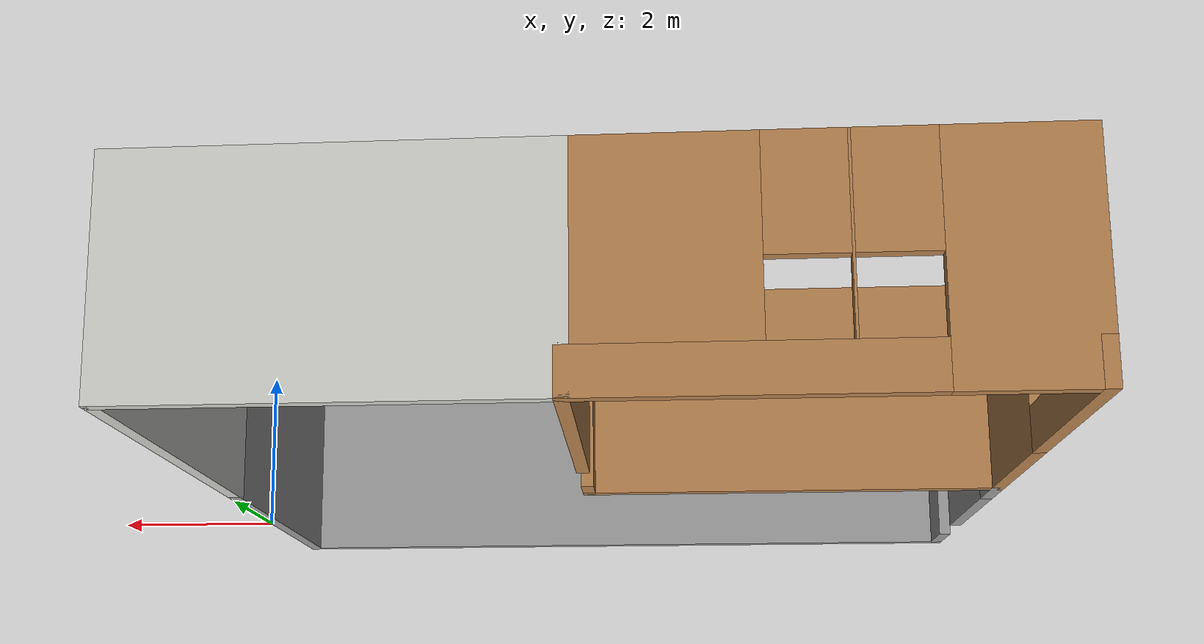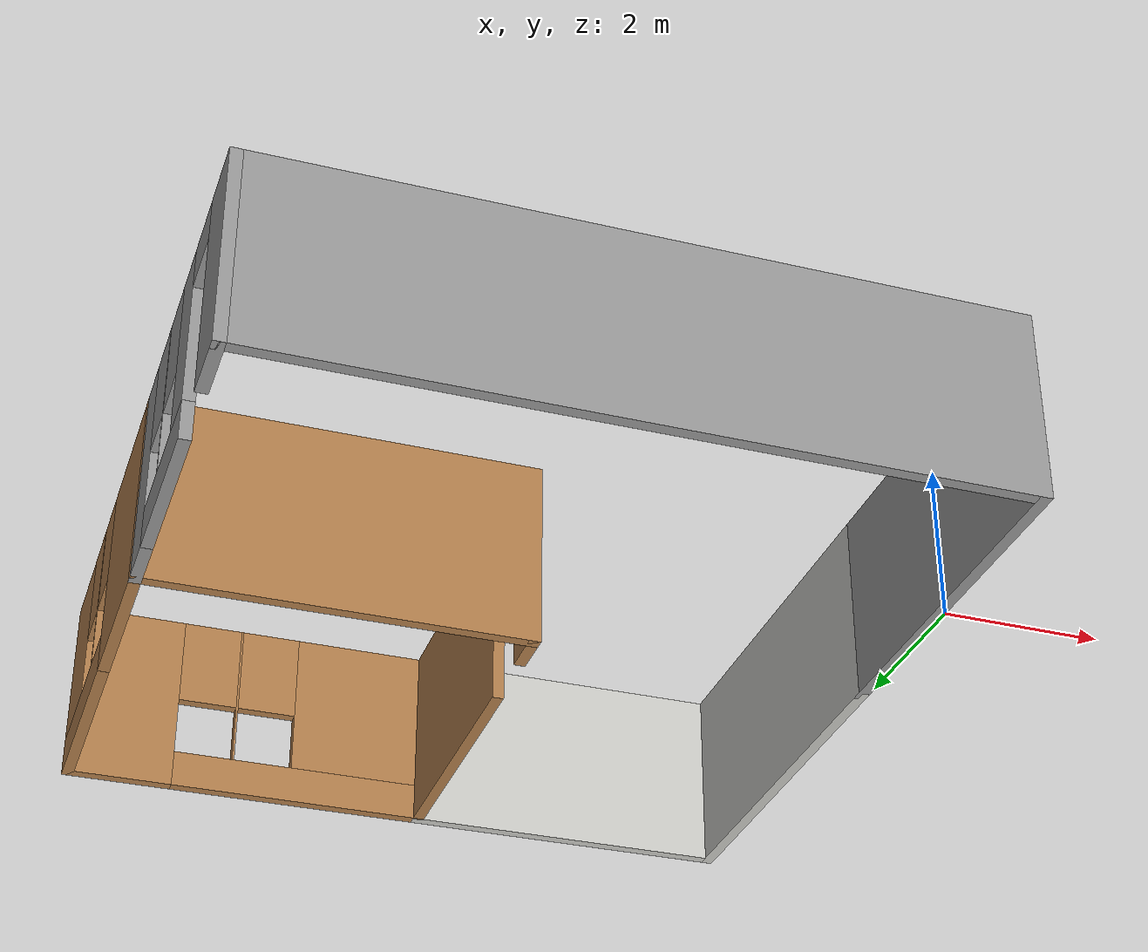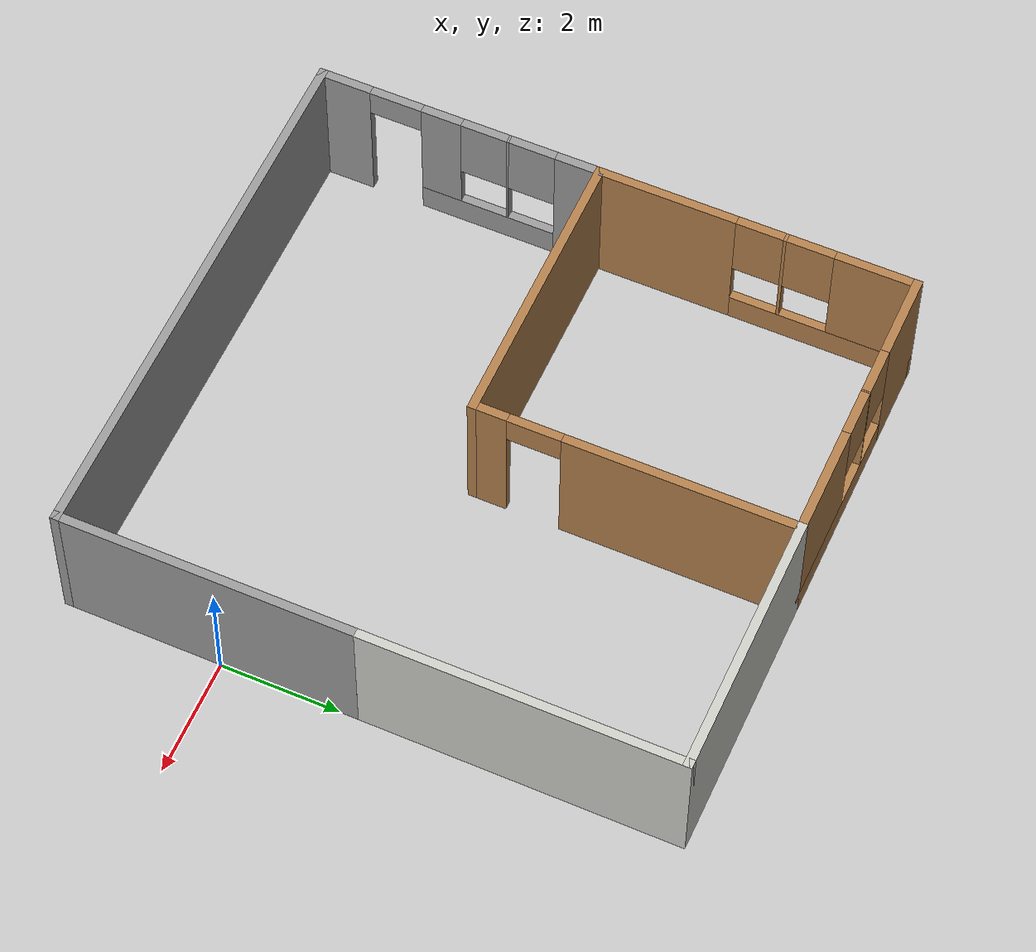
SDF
<?xml version='1.0'?>
<sdf version='1.6'>
  <model name='studio'>
    <pose frame=''>-4.67145 2.48896 0 0 -0 0</pose>
    <link name='Wall_1'>
      <pose frame=''>-2.175 5.1 0 0 -0 0</pose>
      <visual name='Wall_1_Visual_0'>
        <pose frame=''>-1.77202 0 1.25 0 -0 0</pose>
        <geometry>
          <box>
            <size>1.45596 0.15 2.5</size>
          </box>
        </geometry>
        <material>
          <script>
            <uri>file://media/materials/scripts/gazebo.material</uri>
            <name>Gazebo/Wood</name>
          </script>
          <ambient>1 1 1 1</ambient>
        </material>
        <meta>
          <layer>0</layer>
        </meta>
      </visual>
      <collision name='Wall_1_Collision_0'>
        <geometry>
          <box>
            <size>1.45596 0.15 2.5</size>
          </box>
        </geometry>
        <pose frame=''>-1.77202 0 1.25 0 -0 0</pose>
      </collision>
      <visual name='Wall_1_Visual_1'>
        <pose frame=''>0.727978 0 0.25 0 -0 0</pose>
        <geometry>
          <box>
            <size>3.54404 0.15 0.5</size>
          </box>
        </geometry>
        <material>
          <script>
            <uri>file://media/materials/scripts/gazebo.material</uri>
            <name>Gazebo/Wood</name>
          </script>
          <ambient>1 1 1 1</ambient>
        </material>
        <meta>
          <layer>0</layer>
        </meta>
      </visual>
      <collision name='Wall_1_Collision_1'>
        <geometry>
          <box>
            <size>3.54404 0.15 0.5</size>
          </box>
        </geometry>
        <pose frame=''>0.727978 0 0.25 0 -0 0</pose>
      </collision>
      <visual name='Wall_1_Visual_2'>
        <pose frame=''>-0.230044 0 1.5 0 -0 0</pose>
        <geometry>
          <box>
            <size>0.028 0.15 2</size>
          </box>
        </geometry>
        <material>
          <script>
            <uri>file://media/materials/scripts/gazebo.material</uri>
            <name>Gazebo/Wood</name>
          </script>
          <ambient>1 1 1 1</ambient>
        </material>
        <meta>
          <layer>0</layer>
        </meta>
      </visual>
      <collision name='Wall_1_Collision_2'>
        <geometry>
          <box>
            <size>0.028 0.15 2</size>
          </box>
        </geometry>
        <pose frame=''>-0.230044 0 1.5 0 -0 0</pose>
      </collision>
      <visual name='Wall_1_Visual_3'>
        <pose frame=''>1.54198 0 1.5 0 -0 0</pose>
        <geometry>
          <box>
            <size>1.91604 0.15 2</size>
          </box>
        </geometry>
        <material>
          <script>
            <uri>file://media/materials/scripts/gazebo.material</uri>
            <name>Gazebo/Wood</name>
          </script>
          <ambient>1 1 1 1</ambient>
        </material>
        <meta>
          <layer>0</layer>
        </meta>
      </visual>
      <collision name='Wall_1_Collision_3'>
        <geometry>
          <box>
            <size>1.91604 0.15 2</size>
          </box>
        </geometry>
        <pose frame=''>1.54198 0 1.5 0 -0 0</pose>
      </collision>
      <visual name='Wall_1_Visual_4'>
        <pose frame=''>-0.644044 0 1.9 0 -0 0</pose>
        <geometry>
          <box>
            <size>0.8 0.15 1.2</size>
          </box>
        </geometry>
        <material>
          <script>
            <uri>file://media/materials/scripts/gazebo.material</uri>
            <name>Gazebo/Wood</name>
          </script>
          <ambient>1 1 1 1</ambient>
        </material>
        <meta>
          <layer>0</layer>
        </meta>
      </visual>
      <collision name='Wall_1_Collision_4'>
        <geometry>
          <box>
            <size>0.8 0.15 1.2</size>
          </box>
        </geometry>
        <pose frame=''>-0.644044 0 1.9 0 -0 0</pose>
      </collision>
      <visual name='Wall_1_Visual_5'>
        <pose frame=''>0.183956 0 1.9 0 -0 0</pose>
        <geometry>
          <box>
            <size>0.8 0.15 1.2</size>
          </box>
        </geometry>
        <material>
          <script>
            <uri>file://media/materials/scripts/gazebo.material</uri>
            <name>Gazebo/Wood</name>
          </script>
          <ambient>1 1 1 1</ambient>
        </material>
        <meta>
          <layer>0</layer>
        </meta>
      </visual>
      <collision name='Wall_1_Collision_5'>
        <geometry>
          <box>
            <size>0.8 0.15 1.2</size>
          </box>
        </geometry>
        <pose frame=''>0.183956 0 1.9 0 -0 0</pose>
      </collision>
    </link>
    <link name='Wall_11'>
      <collision name='Wall_11_Collision'>
        <geometry>
          <box>
            <size>5 0.15 2.5</size>
          </box>
        </geometry>
        <pose frame=''>0 0 1.25 0 -0 0</pose>
      </collision>
      <visual name='Wall_11_Visual'>
        <pose frame=''>0 0 1.25 0 -0 0</pose>
        <geometry>
          <box>
            <size>5 0.15 2.5</size>
          </box>
        </geometry>
        <material>
          <script>
            <uri>file://media/materials/scripts/gazebo.material</uri>
            <name>Gazebo/Grey</name>
          </script>
          <ambient>1 1 1 1</ambient>
        </material>
        <meta>
          <layer>0</layer>
        </meta>
      </visual>
      <pose frame=''>4.6 -2.675 0 0 -0 -1.5708</pose>
    </link>
    <link name='Wall_12'>
      <collision name='Wall_12_Collision'>
        <geometry>
          <box>
            <size>9.35 0.15 2.5</size>
          </box>
        </geometry>
        <pose frame=''>0 0 1.25 0 -0 0</pose>
      </collision>
      <visual name='Wall_12_Visual'>
        <pose frame=''>0 0 1.25 0 -0 0</pose>
        <geometry>
          <box>
            <size>9.35 0.15 2.5</size>
          </box>
        </geometry>
        <material>
          <script>
            <uri>file://media/materials/scripts/gazebo.material</uri>
            <name>Gazebo/Grey</name>
          </script>
          <ambient>1 1 1 1</ambient>
        </material>
        <meta>
          <layer>0</layer>
        </meta>
      </visual>
      <pose frame=''>0 -5.1 0 0 -0 3.14159</pose>
    </link>
    <link name='Wall_2'>
      <pose frame=''>0.25 2.425 0 0 -0 -1.5708</pose>
      <visual name='Wall_2_Visual_0'>
        <pose frame=''>-0.777433 0 1.25 0 -0 0</pose>
        <geometry>
          <box>
            <size>3.94513 0.15 2.5</size>
          </box>
        </geometry>
        <material>
          <script>
            <uri>file://media/materials/scripts/gazebo.material</uri>
            <name>Gazebo/Wood</name>
          </script>
          <ambient>1 1 1 1</ambient>
        </material>
        <meta>
          <layer>0</layer>
        </meta>
      </visual>
      <collision name='Wall_2_Collision_0'>
        <geometry>
          <box>
            <size>3.94513 0.15 2.5</size>
          </box>
        </geometry>
        <pose frame=''>-0.777433 0 1.25 0 -0 0</pose>
      </collision>
      <visual name='Wall_2_Visual_1'>
        <pose frame=''>2.42257 0 1.25 0 -0 0</pose>
        <geometry>
          <box>
            <size>0.654866 0.15 2.5</size>
          </box>
        </geometry>
        <material>
          <script>
            <uri>file://media/materials/scripts/gazebo.material</uri>
            <name>Gazebo/Wood</name>
          </script>
          <ambient>1 1 1 1</ambient>
        </material>
        <meta>
          <layer>0</layer>
        </meta>
      </visual>
      <collision name='Wall_2_Collision_1'>
        <geometry>
          <box>
            <size>0.654866 0.15 2.5</size>
          </box>
        </geometry>
        <pose frame=''>2.42257 0 1.25 0 -0 0</pose>
      </collision>
      <visual name='Wall_2_Visual_2'>
        <pose frame=''>1.64513 0 2.25 0 -0 0</pose>
        <geometry>
          <box>
            <size>0.9 0.15 0.5</size>
          </box>
        </geometry>
        <material>
          <script>
            <uri>file://media/materials/scripts/gazebo.material</uri>
            <name>Gazebo/Wood</name>
          </script>
          <ambient>1 1 1 1</ambient>
        </material>
        <meta>
          <layer>0</layer>
        </meta>
      </visual>
      <collision name='Wall_2_Collision_2'>
        <geometry>
          <box>
            <size>0.9 0.15 0.5</size>
          </box>
        </geometry>
        <pose frame=''>1.64513 0 2.25 0 -0 0</pose>
      </collision>
    </link>
    <link name='Wall_3'>
      <collision name='Wall_3_Collision'>
        <geometry>
          <box>
            <size>5 0.15 2.5</size>
          </box>
        </geometry>
        <pose frame=''>0 0 1.25 0 -0 0</pose>
      </collision>
      <visual name='Wall_3_Visual'>
        <pose frame=''>0 0 1.25 0 -0 0</pose>
        <geometry>
          <box>
            <size>5 0.15 2.5</size>
          </box>
        </geometry>
        <material>
          <script>
            <uri>file://media/materials/scripts/gazebo.material</uri>
            <name>Gazebo/Wood</name>
          </script>
          <ambient>1 1 1 1</ambient>
        </material>
        <meta>
          <layer>0</layer>
        </meta>
      </visual>
      <pose frame=''>-2.175 -0.25 0 0 -0 3.14159</pose>
    </link>
    <link name='Wall_4'>
      <pose frame=''>-4.6 2.425 0 0 -0 1.5708</pose>
      <visual name='Wall_4_Visual_0'>
        <pose frame=''>-1.53819 0 1.25 0 -0 0</pose>
        <geometry>
          <box>
            <size>2.42361 0.15 2.5</size>
          </box>
        </geometry>
        <material>
          <script>
            <uri>file://media/materials/scripts/gazebo.material</uri>
            <name>Gazebo/Wood</name>
          </script>
          <ambient>1 1 1 1</ambient>
        </material>
        <meta>
          <layer>0</layer>
        </meta>
      </visual>
      <collision name='Wall_4_Collision_0'>
        <geometry>
          <box>
            <size>2.42361 0.15 2.5</size>
          </box>
        </geometry>
        <pose frame=''>-1.53819 0 1.25 0 -0 0</pose>
      </collision>
      <visual name='Wall_4_Visual_1'>
        <pose frame=''>1.21181 0 0.25 0 -0 0</pose>
        <geometry>
          <box>
            <size>3.07639 0.15 0.5</size>
          </box>
        </geometry>
        <material>
          <script>
            <uri>file://media/materials/scripts/gazebo.material</uri>
            <name>Gazebo/Wood</name>
          </script>
          <ambient>1 1 1 1</ambient>
        </material>
        <meta>
          <layer>0</layer>
        </meta>
      </visual>
      <collision name='Wall_4_Collision_1'>
        <geometry>
          <box>
            <size>3.07639 0.15 0.5</size>
          </box>
        </geometry>
        <pose frame=''>1.21181 0 0.25 0 -0 0</pose>
      </collision>
      <visual name='Wall_4_Visual_2'>
        <pose frame=''>0.499109 0 1.5 0 -0 0</pose>
        <geometry>
          <box>
            <size>0.051 0.15 2</size>
          </box>
        </geometry>
        <material>
          <script>
            <uri>file://media/materials/scripts/gazebo.material</uri>
            <name>Gazebo/Wood</name>
          </script>
          <ambient>1 1 1 1</ambient>
        </material>
        <meta>
          <layer>0</layer>
        </meta>
      </visual>
      <collision name='Wall_4_Collision_2'>
        <geometry>
          <box>
            <size>0.051 0.15 2</size>
          </box>
        </geometry>
        <pose frame=''>0.499109 0 1.5 0 -0 0</pose>
      </collision>
      <visual name='Wall_4_Visual_3'>
        <pose frame=''>2.0373 0 1.5 0 -0 0</pose>
        <geometry>
          <box>
            <size>1.42539 0.15 2</size>
          </box>
        </geometry>
        <material>
          <script>
            <uri>file://media/materials/scripts/gazebo.material</uri>
            <name>Gazebo/Wood</name>
          </script>
          <ambient>1 1 1 1</ambient>
        </material>
        <meta>
          <layer>0</layer>
        </meta>
      </visual>
      <collision name='Wall_4_Collision_3'>
        <geometry>
          <box>
            <size>1.42539 0.15 2</size>
          </box>
        </geometry>
        <pose frame=''>2.0373 0 1.5 0 -0 0</pose>
      </collision>
      <visual name='Wall_4_Visual_4'>
        <pose frame=''>0.073609 0 1.9 0 -0 0</pose>
        <geometry>
          <box>
            <size>0.8 0.15 1.2</size>
          </box>
        </geometry>
        <material>
          <script>
            <uri>file://media/materials/scripts/gazebo.material</uri>
            <name>Gazebo/Wood</name>
          </script>
          <ambient>1 1 1 1</ambient>
        </material>
        <meta>
          <layer>0</layer>
        </meta>
      </visual>
      <collision name='Wall_4_Collision_4'>
        <geometry>
          <box>
            <size>0.8 0.15 1.2</size>
          </box>
        </geometry>
        <pose frame=''>0.073609 0 1.9 0 -0 0</pose>
      </collision>
      <visual name='Wall_4_Visual_5'>
        <pose frame=''>0.924609 0 1.9 0 -0 0</pose>
        <geometry>
          <box>
            <size>0.8 0.15 1.2</size>
          </box>
        </geometry>
        <material>
          <script>
            <uri>file://media/materials/scripts/gazebo.material</uri>
            <name>Gazebo/Wood</name>
          </script>
          <ambient>1 1 1 1</ambient>
        </material>
        <meta>
          <layer>0</layer>
        </meta>
      </visual>
      <collision name='Wall_4_Collision_5'>
        <geometry>
          <box>
            <size>0.8 0.15 1.2</size>
          </box>
        </geometry>
        <pose frame=''>0.924609 0 1.9 0 -0 0</pose>
      </collision>
    </link>
    <link name='Wall_6'>
      <collision name='Wall_6_Collision'>
        <geometry>
          <box>
            <size>4.5 0.15 2.5</size>
          </box>
        </geometry>
        <pose frame=''>0 0 1.25 0 -0 0</pose>
      </collision>
      <visual name='Wall_6_Visual'>
        <pose frame=''>0 0 1.25 0 -0 0</pose>
        <geometry>
          <box>
            <size>4.5 0.15 2.5</size>
          </box>
        </geometry>
        <material>
          <script>
            <uri>file://media/materials/scripts/gazebo.material</uri>
            <name>Gazebo/CeilingTiled</name>
          </script>
          <ambient>1 1 1 1</ambient>
        </material>
        <meta>
          <layer>0</layer>
        </meta>
      </visual>
      <pose frame=''>2.425 5.1 0 0 -0 0</pose>
    </link>
    <link name='Wall_7'>
      <collision name='Wall_7_Collision'>
        <geometry>
          <box>
            <size>5.5 0.15 2.5</size>
          </box>
        </geometry>
        <pose frame=''>0 0 1.25 0 -0 0</pose>
      </collision>
      <visual name='Wall_7_Visual'>
        <pose frame=''>0 0 1.25 0 -0 0</pose>
        <geometry>
          <box>
            <size>5.5 0.15 2.5</size>
          </box>
        </geometry>
        <material>
          <script>
            <uri>file://media/materials/scripts/gazebo.material</uri>
            <name>Gazebo/CeilingTiled</name>
          </script>
          <ambient>1 1 1 1</ambient>
        </material>
        <meta>
          <layer>0</layer>
        </meta>
      </visual>
      <pose frame=''>4.6 2.425 0 0 -0 -1.5708</pose>
    </link>
    <link name='Wall_9'>
      <pose frame=''>-4.6 -2.675 0 0 -0 -1.5708</pose>
      <visual name='Wall_9_Visual_0'>
        <pose frame=''>-2.08997 0 1.25 0 -0 0</pose>
        <geometry>
          <box>
            <size>0.820061 0.15 2.5</size>
          </box>
        </geometry>
        <material>
          <script>
            <uri>file://media/materials/scripts/gazebo.material</uri>
            <name>Gazebo/Grey</name>
          </script>
          <ambient>1 1 1 1</ambient>
        </material>
        <meta>
          <layer>0</layer>
        </meta>
      </visual>
      <collision name='Wall_9_Collision_0'>
        <geometry>
          <box>
            <size>0.820061 0.15 2.5</size>
          </box>
        </geometry>
        <pose frame=''>-2.08997 0 1.25 0 -0 0</pose>
      </collision>
      <visual name='Wall_9_Visual_1'>
        <pose frame=''>2.02654 0 1.25 0 -0 0</pose>
        <geometry>
          <box>
            <size>0.946922 0.15 2.5</size>
          </box>
        </geometry>
        <material>
          <script>
            <uri>file://media/materials/scripts/gazebo.material</uri>
            <name>Gazebo/Grey</name>
          </script>
          <ambient>1 1 1 1</ambient>
        </material>
        <meta>
          <layer>0</layer>
        </meta>
      </visual>
      <collision name='Wall_9_Collision_1'>
        <geometry>
          <box>
            <size>0.946922 0.15 2.5</size>
          </box>
        </geometry>
        <pose frame=''>2.02654 0 1.25 0 -0 0</pose>
      </collision>
      <visual name='Wall_9_Visual_2'>
        <pose frame=''>-0.513431 0 0.25 0 -0 0</pose>
        <geometry>
          <box>
            <size>2.33302 0.15 0.5</size>
          </box>
        </geometry>
        <material>
          <script>
            <uri>file://media/materials/scripts/gazebo.material</uri>
            <name>Gazebo/Grey</name>
          </script>
          <ambient>1 1 1 1</ambient>
        </material>
        <meta>
          <layer>0</layer>
        </meta>
      </visual>
      <collision name='Wall_9_Collision_2'>
        <geometry>
          <box>
            <size>2.33302 0.15 0.5</size>
          </box>
        </geometry>
        <pose frame=''>-0.513431 0 0.25 0 -0 0</pose>
      </collision>
      <visual name='Wall_9_Visual_3'>
        <pose frame=''>-0.861699 0 1.5 0 -0 0</pose>
        <geometry>
          <box>
            <size>0.036481 0.15 2</size>
          </box>
        </geometry>
        <material>
          <script>
            <uri>file://media/materials/scripts/gazebo.material</uri>
            <name>Gazebo/Grey</name>
          </script>
          <ambient>1 1 1 1</ambient>
        </material>
        <meta>
          <layer>0</layer>
        </meta>
      </visual>
      <collision name='Wall_9_Collision_3'>
        <geometry>
          <box>
            <size>0.036481 0.15 2</size>
          </box>
        </geometry>
        <pose frame=''>-0.861699 0 1.5 0 -0 0</pose>
      </collision>
      <visual name='Wall_9_Visual_4'>
        <pose frame=''>0.30481 0 1.5 0 -0 0</pose>
        <geometry>
          <box>
            <size>0.696536 0.15 2</size>
          </box>
        </geometry>
        <material>
          <script>
            <uri>file://media/materials/scripts/gazebo.material</uri>
            <name>Gazebo/Grey</name>
          </script>
          <ambient>1 1 1 1</ambient>
        </material>
        <meta>
          <layer>0</layer>
        </meta>
      </visual>
      <collision name='Wall_9_Collision_4'>
        <geometry>
          <box>
            <size>0.696536 0.15 2</size>
          </box>
        </geometry>
        <pose frame=''>0.30481 0 1.5 0 -0 0</pose>
      </collision>
      <visual name='Wall_9_Visual_5'>
        <pose frame=''>-1.27994 0 1.9 0 -0 0</pose>
        <geometry>
          <box>
            <size>0.8 0.15 1.2</size>
          </box>
        </geometry>
        <material>
          <script>
            <uri>file://media/materials/scripts/gazebo.material</uri>
            <name>Gazebo/Grey</name>
          </script>
          <ambient>1 1 1 1</ambient>
        </material>
        <meta>
          <layer>0</layer>
        </meta>
      </visual>
      <collision name='Wall_9_Collision_5'>
        <geometry>
          <box>
            <size>0.8 0.15 1.2</size>
          </box>
        </geometry>
        <pose frame=''>-1.27994 0 1.9 0 -0 0</pose>
      </collision>
      <visual name='Wall_9_Visual_6'>
        <pose frame=''>-0.443458 0 1.9 0 -0 0</pose>
        <geometry>
          <box>
            <size>0.8 0.15 1.2</size>
          </box>
        </geometry>
        <material>
          <script>
            <uri>file://media/materials/scripts/gazebo.material</uri>
            <name>Gazebo/Grey</name>
          </script>
          <ambient>1 1 1 1</ambient>
        </material>
        <meta>
          <layer>0</layer>
        </meta>
      </visual>
      <collision name='Wall_9_Collision_6'>
        <geometry>
          <box>
            <size>0.8 0.15 1.2</size>
          </box>
        </geometry>
        <pose frame=''>-0.443458 0 1.9 0 -0 0</pose>
      </collision>
      <visual name='Wall_9_Visual_7'>
        <pose frame=''>1.10308 0 2.25 0 -0 0</pose>
        <geometry>
          <box>
            <size>0.9 0.15 0.5</size>
          </box>
        </geometry>
        <material>
          <script>
            <uri>file://media/materials/scripts/gazebo.material</uri>
            <name>Gazebo/Grey</name>
          </script>
          <ambient>1 1 1 1</ambient>
        </material>
        <meta>
          <layer>0</layer>
        </meta>
      </visual>
      <collision name='Wall_9_Collision_7'>
        <geometry>
          <box>
            <size>0.9 0.15 0.5</size>
          </box>
        </geometry>
        <pose frame=''>1.10308 0 2.25 0 -0 0</pose>
      </collision>
    </link>
    <static>1</static>
  </model>
</sdf>
